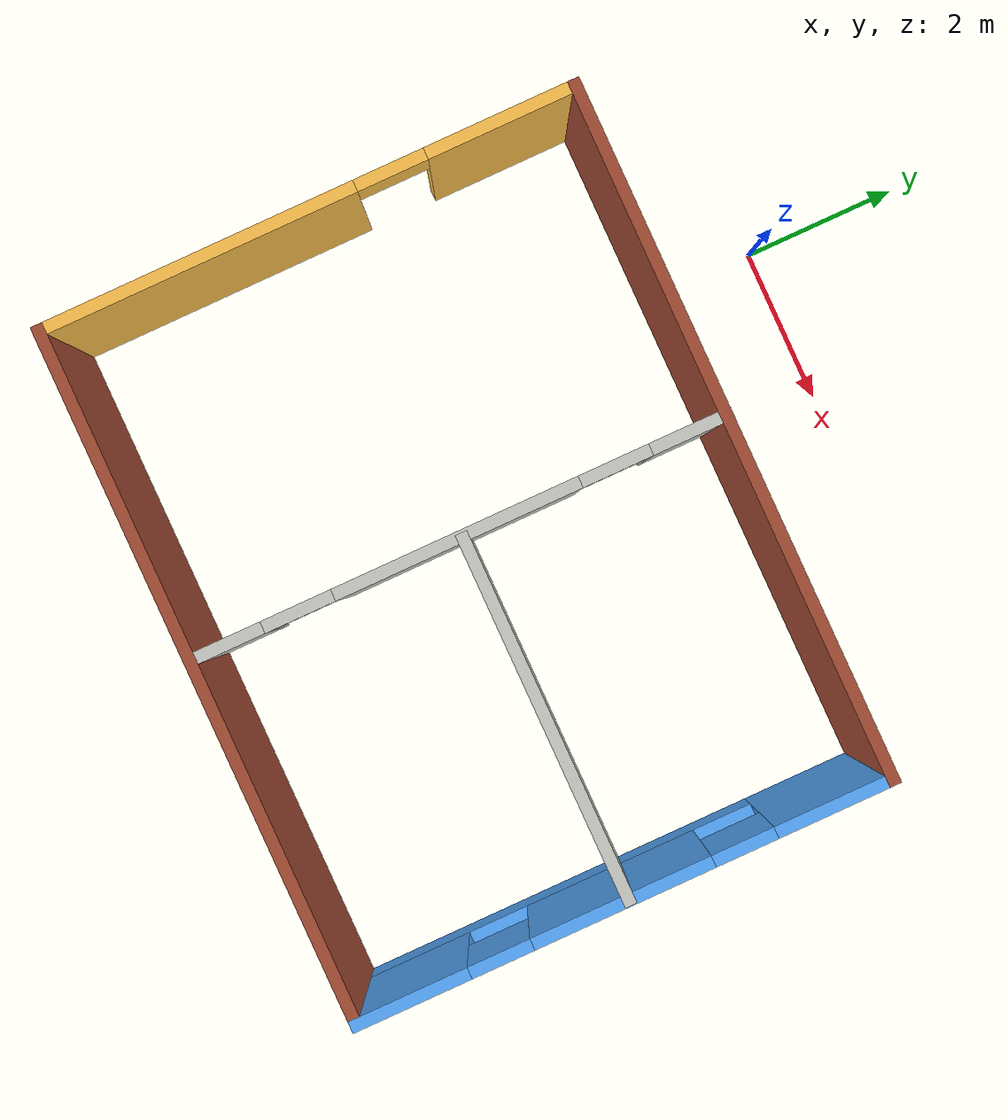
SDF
<?xml version='1.0'?>
<sdf version='1.6'>
  <model name='SomeAppartments'>
    <pose frame=''>2.015 -4.89361 0 0 -0 0</pose>
    <link name='Wall_0'>
      <collision name='Wall_0_Collision'>
        <geometry>
          <box>
            <size>9 0.15 2.5</size>
          </box>
        </geometry>
        <pose frame=''>0 0 1.25 0 -0 0</pose>
      </collision>
      <visual name='Wall_0_Visual'>
        <pose frame=''>0 0 1.25 0 -0 0</pose>
        <geometry>
          <box>
            <size>9 0.15 2.5</size>
          </box>
        </geometry>
        <material>
          <script>
            <uri>file://media/materials/scripts/gazebo.material</uri>
            <name>Gazebo/Bricks</name>
          </script>
          <ambient>1 0.764706 0.305882 1</ambient>
        </material>
        <meta>
          <layer>0</layer>
        </meta>
      </visual>
      <pose frame=''>0 3.42361 0 0 -0 0</pose>
    </link>
    <link name='Wall_11'>
      <collision name='Wall_11_Collision'>
        <geometry>
          <box>
            <size>4.75 0.15 2.5</size>
          </box>
        </geometry>
        <pose frame=''>0 0 1.25 0 -0 0</pose>
      </collision>
      <visual name='Wall_11_Visual'>
        <pose frame=''>0 0 1.25 0 -0 0</pose>
        <geometry>
          <box>
            <size>4.75 0.15 2.5</size>
          </box>
        </geometry>
        <material>
          <script>
            <uri>file://media/materials/scripts/gazebo.material</uri>
            <name>Gazebo/CeilingTiled</name>
          </script>
          <ambient>0.921569 0.807843 0.615686 1</ambient>
        </material>
        <meta>
          <layer>0</layer>
        </meta>
      </visual>
      <pose frame=''>2.11632 0.050811 0 0 -0 0</pose>
    </link>
    <link name='Wall_2'>
      <pose frame=''>4.425 -0.001393 0 0 0 -1.5708</pose>
      <visual name='Wall_2_Visual_0'>
        <pose frame=''>-2.71689 0 1.25 0 -0 0</pose>
        <geometry>
          <box>
            <size>1.56622 0.15 2.5</size>
          </box>
        </geometry>
        <material>
          <script>
            <uri>file://media/materials/scripts/gazebo.material</uri>
            <name>Gazebo/Grey</name>
          </script>
          <ambient>0.333333 0.666667 1 1</ambient>
        </material>
        <meta>
          <layer>0</layer>
        </meta>
      </visual>
      <collision name='Wall_2_Collision_0'>
        <geometry>
          <box>
            <size>1.56622 0.15 2.5</size>
          </box>
        </geometry>
        <pose frame=''>-2.71689 0 1.25 0 -0 0</pose>
      </collision>
      <visual name='Wall_2_Visual_1'>
        <pose frame=''>0.783108 0 0.25 0 -0 0</pose>
        <geometry>
          <box>
            <size>5.43378 0.15 0.5</size>
          </box>
        </geometry>
        <material>
          <script>
            <uri>file://media/materials/scripts/gazebo.material</uri>
            <name>Gazebo/Grey</name>
          </script>
          <ambient>0.333333 0.666667 1 1</ambient>
        </material>
        <meta>
          <layer>0</layer>
        </meta>
      </visual>
      <collision name='Wall_2_Collision_1'>
        <geometry>
          <box>
            <size>5.43378 0.15 0.5</size>
          </box>
        </geometry>
        <pose frame=''>0.783108 0 0.25 0 -0 0</pose>
      </collision>
      <visual name='Wall_2_Visual_2'>
        <pose frame=''>0.022831 0 1.5 0 -0 0</pose>
        <geometry>
          <box>
            <size>2.31323 0.15 2</size>
          </box>
        </geometry>
        <material>
          <script>
            <uri>file://media/materials/scripts/gazebo.material</uri>
            <name>Gazebo/Grey</name>
          </script>
          <ambient>0.333333 0.666667 1 1</ambient>
        </material>
        <meta>
          <layer>0</layer>
        </meta>
      </visual>
      <collision name='Wall_2_Collision_2'>
        <geometry>
          <box>
            <size>2.31323 0.15 2</size>
          </box>
        </geometry>
        <pose frame=''>0.022831 0 1.5 0 -0 0</pose>
      </collision>
      <visual name='Wall_2_Visual_3'>
        <pose frame=''>2.73972 0 1.5 0 -0 0</pose>
        <geometry>
          <box>
            <size>1.52055 0.15 2</size>
          </box>
        </geometry>
        <material>
          <script>
            <uri>file://media/materials/scripts/gazebo.material</uri>
            <name>Gazebo/Grey</name>
          </script>
          <ambient>0.333333 0.666667 1 1</ambient>
        </material>
        <meta>
          <layer>0</layer>
        </meta>
      </visual>
      <collision name='Wall_2_Collision_3'>
        <geometry>
          <box>
            <size>1.52055 0.15 2</size>
          </box>
        </geometry>
        <pose frame=''>2.73972 0 1.5 0 -0 0</pose>
      </collision>
      <visual name='Wall_2_Visual_4'>
        <pose frame=''>-1.53378 0 1.9 0 -0 0</pose>
        <geometry>
          <box>
            <size>0.8 0.15 1.2</size>
          </box>
        </geometry>
        <material>
          <script>
            <uri>file://media/materials/scripts/gazebo.material</uri>
            <name>Gazebo/Grey</name>
          </script>
          <ambient>0.333333 0.666667 1 1</ambient>
        </material>
        <meta>
          <layer>0</layer>
        </meta>
      </visual>
      <collision name='Wall_2_Collision_4'>
        <geometry>
          <box>
            <size>0.8 0.15 1.2</size>
          </box>
        </geometry>
        <pose frame=''>-1.53378 0 1.9 0 -0 0</pose>
      </collision>
      <visual name='Wall_2_Visual_5'>
        <pose frame=''>1.57945 0 1.9 0 -0 0</pose>
        <geometry>
          <box>
            <size>0.8 0.15 1.2</size>
          </box>
        </geometry>
        <material>
          <script>
            <uri>file://media/materials/scripts/gazebo.material</uri>
            <name>Gazebo/Grey</name>
          </script>
          <ambient>0.333333 0.666667 1 1</ambient>
        </material>
        <meta>
          <layer>0</layer>
        </meta>
      </visual>
      <collision name='Wall_2_Collision_5'>
        <geometry>
          <box>
            <size>0.8 0.15 1.2</size>
          </box>
        </geometry>
        <pose frame=''>1.57945 0 1.9 0 -0 0</pose>
      </collision>
    </link>
    <link name='Wall_3'>
      <collision name='Wall_3_Collision'>
        <geometry>
          <box>
            <size>9 0.15 2.5</size>
          </box>
        </geometry>
        <pose frame=''>0 0 1.25 0 -0 0</pose>
      </collision>
      <visual name='Wall_3_Visual'>
        <pose frame=''>0 0 1.25 0 -0 0</pose>
        <geometry>
          <box>
            <size>9 0.15 2.5</size>
          </box>
        </geometry>
        <material>
          <script>
            <uri>file://media/materials/scripts/gazebo.material</uri>
            <name>Gazebo/Bricks</name>
          </script>
          <ambient>1 0.764706 0.305882 1</ambient>
        </material>
        <meta>
          <layer>0</layer>
        </meta>
      </visual>
      <pose frame=''>0 -3.42639 0 0 -0 3.14159</pose>
    </link>
    <link name='Wall_7'>
      <pose frame=''>-4.425 -0.001393 0 0 0 -1.5708</pose>
      <visual name='Wall_7_Visual_0'>
        <pose frame=''>-2.50578 0 1.25 0 -0 0</pose>
        <geometry>
          <box>
            <size>1.98845 0.15 2.5</size>
          </box>
        </geometry>
        <material>
          <script>
            <uri>file://media/materials/scripts/gazebo.material</uri>
            <name>Gazebo/Grey</name>
          </script>
          <ambient>1 0.764706 0.305882 1</ambient>
        </material>
        <meta>
          <layer>0</layer>
        </meta>
      </visual>
      <collision name='Wall_7_Collision_0'>
        <geometry>
          <box>
            <size>1.98845 0.15 2.5</size>
          </box>
        </geometry>
        <pose frame=''>-2.50578 0 1.25 0 -0 0</pose>
      </collision>
      <visual name='Wall_7_Visual_1'>
        <pose frame=''>1.44422 0 1.25 0 -0 0</pose>
        <geometry>
          <box>
            <size>4.11155 0.15 2.5</size>
          </box>
        </geometry>
        <material>
          <script>
            <uri>file://media/materials/scripts/gazebo.material</uri>
            <name>Gazebo/Grey</name>
          </script>
          <ambient>1 0.764706 0.305882 1</ambient>
        </material>
        <meta>
          <layer>0</layer>
        </meta>
      </visual>
      <collision name='Wall_7_Collision_1'>
        <geometry>
          <box>
            <size>4.11155 0.15 2.5</size>
          </box>
        </geometry>
        <pose frame=''>1.44422 0 1.25 0 -0 0</pose>
      </collision>
      <visual name='Wall_7_Visual_2'>
        <pose frame=''>-1.06155 0 2.25 0 -0 0</pose>
        <geometry>
          <box>
            <size>0.9 0.15 0.5</size>
          </box>
        </geometry>
        <material>
          <script>
            <uri>file://media/materials/scripts/gazebo.material</uri>
            <name>Gazebo/Grey</name>
          </script>
          <ambient>1 0.764706 0.305882 1</ambient>
        </material>
        <meta>
          <layer>0</layer>
        </meta>
      </visual>
      <collision name='Wall_7_Collision_2'>
        <geometry>
          <box>
            <size>0.9 0.15 0.5</size>
          </box>
        </geometry>
        <pose frame=''>-1.06155 0 2.25 0 -0 0</pose>
      </collision>
    </link>
    <link name='Wall_9'>
      <pose frame=''>-0.218658 0.001393 0 0 0 -1.5708</pose>
      <visual name='Wall_9_Visual_0'>
        <pose frame=''>-2.97915 0 1.25 0 -0 0</pose>
        <geometry>
          <box>
            <size>1.0417 0.15 2.5</size>
          </box>
        </geometry>
        <material>
          <script>
            <uri>file://media/materials/scripts/gazebo.material</uri>
            <name>Gazebo/CeilingTiled</name>
          </script>
          <ambient>0.921569 0.807843 0.615686 1</ambient>
        </material>
        <meta>
          <layer>0</layer>
        </meta>
      </visual>
      <collision name='Wall_9_Collision_0'>
        <geometry>
          <box>
            <size>1.0417 0.15 2.5</size>
          </box>
        </geometry>
        <pose frame=''>-2.97915 0 1.25 0 -0 0</pose>
      </collision>
      <visual name='Wall_9_Visual_1'>
        <pose frame=''>0.020306 0 1.25 0 -0 0</pose>
        <geometry>
          <box>
            <size>3.15722 0.15 2.5</size>
          </box>
        </geometry>
        <material>
          <script>
            <uri>file://media/materials/scripts/gazebo.material</uri>
            <name>Gazebo/CeilingTiled</name>
          </script>
          <ambient>0.921569 0.807843 0.615686 1</ambient>
        </material>
        <meta>
          <layer>0</layer>
        </meta>
      </visual>
      <collision name='Wall_9_Collision_1'>
        <geometry>
          <box>
            <size>3.15722 0.15 2.5</size>
          </box>
        </geometry>
        <pose frame=''>0.020306 0 1.25 0 -0 0</pose>
      </collision>
      <visual name='Wall_9_Visual_2'>
        <pose frame=''>2.99946 0 1.25 0 -0 0</pose>
        <geometry>
          <box>
            <size>1.00108 0.15 2.5</size>
          </box>
        </geometry>
        <material>
          <script>
            <uri>file://media/materials/scripts/gazebo.material</uri>
            <name>Gazebo/CeilingTiled</name>
          </script>
          <ambient>0.921569 0.807843 0.615686 1</ambient>
        </material>
        <meta>
          <layer>0</layer>
        </meta>
      </visual>
      <collision name='Wall_9_Collision_2'>
        <geometry>
          <box>
            <size>1.00108 0.15 2.5</size>
          </box>
        </geometry>
        <pose frame=''>2.99946 0 1.25 0 -0 0</pose>
      </collision>
      <visual name='Wall_9_Visual_3'>
        <pose frame=''>-2.00831 0 2.25 0 -0 0</pose>
        <geometry>
          <box>
            <size>0.9 0.15 0.5</size>
          </box>
        </geometry>
        <material>
          <script>
            <uri>file://media/materials/scripts/gazebo.material</uri>
            <name>Gazebo/CeilingTiled</name>
          </script>
          <ambient>0.921569 0.807843 0.615686 1</ambient>
        </material>
        <meta>
          <layer>0</layer>
        </meta>
      </visual>
      <collision name='Wall_9_Collision_3'>
        <geometry>
          <box>
            <size>0.9 0.15 0.5</size>
          </box>
        </geometry>
        <pose frame=''>-2.00831 0 2.25 0 -0 0</pose>
      </collision>
      <visual name='Wall_9_Visual_4'>
        <pose frame=''>2.04892 0 2.25 0 -0 0</pose>
        <geometry>
          <box>
            <size>0.9 0.15 0.5</size>
          </box>
        </geometry>
        <material>
          <script>
            <uri>file://media/materials/scripts/gazebo.material</uri>
            <name>Gazebo/CeilingTiled</name>
          </script>
          <ambient>0.921569 0.807843 0.615686 1</ambient>
        </material>
        <meta>
          <layer>0</layer>
        </meta>
      </visual>
      <collision name='Wall_9_Collision_4'>
        <geometry>
          <box>
            <size>0.9 0.15 0.5</size>
          </box>
        </geometry>
        <pose frame=''>2.04892 0 2.25 0 -0 0</pose>
      </collision>
    </link>
    <static>1</static>
  </model>
</sdf>
